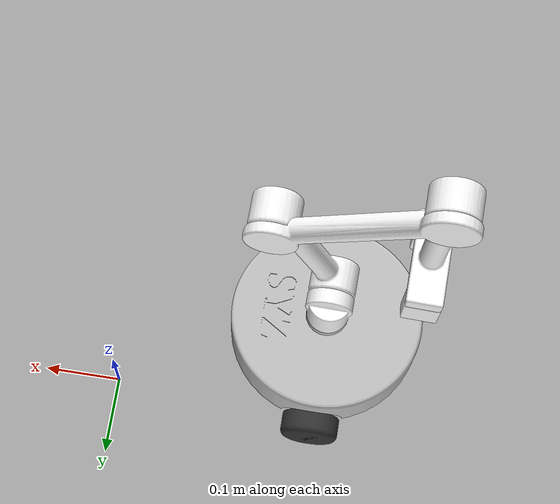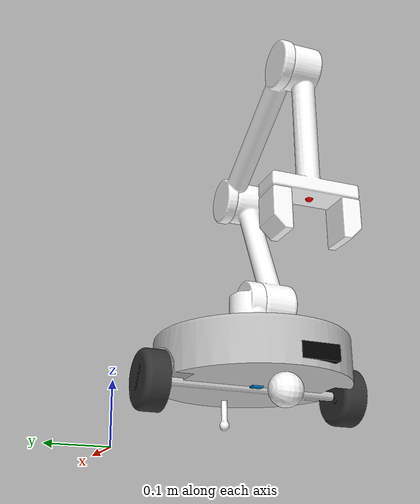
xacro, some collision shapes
<?xml version="1.0" encoding="utf-8"?>
<robot xmlns:xacro="http://www.ros.org/wiki/xacro" name="syz_car_description">

  <xacro:macro name="box_inertia" params="m w h d">
    <inertial>
      <origin xyz="0 0 0" rpy="0 0 0"/>
      <mass value="${m}"/>
      <inertia ixx="${(m/12)*(h*h+d*d)}" ixy="0" ixz="0" iyy="${(m/12)*(w*w+d*d)}" iyz="0" izz="${(m/12)*(w*w+h*h)}"/>
    </inertial>
  </xacro:macro>
  <xacro:macro name="cylinder_inertia" params="m r h">
    <inertial>
      <origin xyz="0 0 0" rpy="0 0 0"/>
      <mass value="${m}"/>
      <inertia ixx="${(m/12)*(3*r*r+h*h)}" ixy="0" ixz="0" iyy="${(m/12)*(3*r*r+h*h)}" iyz="0" izz="${(m/2)*(r*r)}"/>
    </inertial>
  </xacro:macro>
  <xacro:macro name="sphere_inertia" params="m r">
    <inertial>
      <mass value="${m}"/>
      <inertia ixx="${(2/5)*m*r*r}" ixy="0" ixz="0" iyy="${(2/5)*m*r*r}" iyz="0" izz="${(2/5)*m*r*r}"/>
    </inertial>
  </xacro:macro>

  <ros2_control name="GazeboSystem" type="system">
    <hardware><plugin>gazebo_ros2_control/GazeboSystem</plugin></hardware>
    <joint name="joint_1"><command_interface name="position"/><state_interface name="position"/><state_interface name="velocity"/></joint>
    <joint name="joint_2"><command_interface name="position"/><state_interface name="position"/><state_interface name="velocity"/></joint>
    <joint name="joint_3"><command_interface name="position"/><state_interface name="position"/><state_interface name="velocity"/></joint>
    <joint name="joint_4"><command_interface name="position"/><state_interface name="position"/><state_interface name="velocity"/></joint>
    <joint name="paw_joint_1"><command_interface name="position"/><state_interface name="position"/><state_interface name="velocity"/></joint>
    <joint name="paw_joint_2"><command_interface name="position"/><state_interface name="position"/><state_interface name="velocity"/></joint>
  </ros2_control>

  <gazebo>
    <plugin filename="libgazebo_ros2_control.so" name="gazebo_ros2_control">
      <parameters>$(find syz_car_description)/config/my_controllers.yaml</parameters>
    </plugin>
  </gazebo>

  <!-- Diff Drive 插件 -->
  <gazebo>
    <plugin name="diff_drive" filename="libgazebo_ros_diff_drive.so">
      <ros><namespace>/</namespace></ros>
      <left_joint>wheel1_joint</left_joint>
      <right_joint>wheel2_joint</right_joint>
      <wheel_separation>0.266</wheel_separation>
      <wheel_diameter>0.08</wheel_diameter>
      <max_wheel_torque>50</max_wheel_torque>
      <max_wheel_acceleration>2.0</max_wheel_acceleration>

      <!-- 【重要修改】publish_odom 保持 true (我们需要 odom 话题数据给 EKF) -->
      <publish_odom>true</publish_odom>

      <!-- 【CRITICAL FIX】publish_odom_tf 必须改为 false！ -->
      <!-- 因为我们要用 ekf_node 来发布这个 TF。如果这里是 true，会冲突导致严重抖动 -->
      <publish_odom_tf>false</publish_odom_tf>

      <publish_wheel_tf>false</publish_wheel_tf>

      <odometry_frame>odom</odometry_frame>
      <robot_base_frame>base_footprint</robot_base_frame>
    </plugin>
  </gazebo>

  <!-- base_footprint -->
  <link name="base_footprint">
    <visual>
      <origin xyz="0 0 0" rpy="0 0 0" />
      <geometry><box size="0.001 0.001 0.001" /></geometry>
    </visual>
    <inertial>
      <mass value="0.0001" />
      <origin xyz="0 0 0" />
      <inertia ixx="0.0001" ixy="0.0" ixz="0.0" iyy="0.0001" iyz="0.0" izz="0.0001" />
    </inertial>
  </link>

  <joint name="base_joint" type="fixed">
    <parent link="base_footprint"/>
    <child link="base_link"/>
    <origin xyz="0 0 -0.13924" rpy="0 0 3.14159"/>
  </joint>

  <link name="base_link">
    <visual>
      <origin xyz="0 0 0" rpy="0 0 0" />
      <geometry><mesh filename="package://syz_car_description/meshes/base_link.STL" /></geometry>
      <material name=""><color rgba="0.75 0.75 0.75 1" /></material>
    </visual>
    <collision>
      <origin xyz="0.26452 0.10337 0.22" rpy="0 0 0" />
      <geometry><cylinder radius="0.125" length="0.08"/></geometry>
    </collision>
    <inertial>
      <origin xyz="0.26452 0.10337 0.22" rpy="0 0 0" />
      <mass value="10.0" />
      <inertia ixx="0.04" ixy="0.0" ixz="0.0" iyy="0.04" iyz="0.0" izz="0.08" />
    </inertial>
  </link>

  <link name="front_camera_link">
    <visual><geometry><box size="0.02 0.05 0.02"/></geometry><material name="black"><color rgba="0 0 0 1"/></material></visual>
    <collision><geometry><box size="0.02 0.05 0.02"/></geometry></collision>
    <inertial><mass value="0.01"/><inertia ixx="1e-4" ixy="0" ixz="0" iyy="1e-4" iyz="0" izz="1e-4"/></inertial>
  </link>

  <joint name="front_camera_joint" type="fixed">
    <origin xyz="0.38 0.13 0.2" rpy="0 0 0" />
    <parent link="base_link" />
    <child link="front_camera_link" />
  </joint>

  <gazebo reference="front_camera_link">
    <sensor type="camera" name="front_camera_sensor">
      <update_rate>30.0</update_rate>
      <camera>
        <horizontal_fov>1.396</horizontal_fov>
        <image><width>320</width><height>240</height><format>R8G8B8</format></image>
        <clip><near>0.02</near><far>300</far></clip>
      </camera>
      <plugin name="front_camera_controller" filename="libgazebo_ros_camera.so">
        <alwaysOn>true</alwaysOn>
        <updateRate>30.0</updateRate>
        <cameraName>front_camera</cameraName>
        <imageTopicName>image_raw</imageTopicName>
        <cameraInfoTopicName>camera_info</cameraInfoTopicName>
        <frameName>front_camera_link</frameName>
      </plugin>
    </sensor>
  </gazebo>

  <link name="wheel1_link">
    <xacro:cylinder_inertia m="0.5" r="0.04" h="0.04"/>
    <visual><origin xyz="0 0 0" rpy="0 0 0" /><geometry><mesh filename="package://syz_car_description/meshes/wheel1_link.STL" /></geometry><material name=""><color rgba="0.2 0.2 0.2 1" /></material></visual>
    <collision><origin xyz="0 0 0" rpy="0 0 0" /><geometry><cylinder radius="0.04" length="0.04"/></geometry></collision>
  </link>
  <joint name="wheel1_joint" type="continuous">
    <origin xyz="0.26452 0.23637 0.17924" rpy="-1.5708 0 0" />
    <parent link="base_link" />
    <child link="wheel1_link" />
    <axis xyz="0 0 1" />
  </joint>

  <link name="wheel2_link">
    <xacro:cylinder_inertia m="0.5" r="0.04" h="0.04"/>
    <visual><origin xyz="0 0 0" rpy="0 0 0" /><geometry><mesh filename="package://syz_car_description/meshes/wheel2_link.STL" /></geometry><material name=""><color rgba="0.2 0.2 0.2 1" /></material></visual>
    <collision><origin xyz="0 0 0" rpy="0 0 0" /><geometry><cylinder radius="0.04" length="0.04"/></geometry></collision>
  </link>
  <joint name="wheel2_joint" type="continuous">
    <origin xyz="0.26452 -0.029632 0.17924" rpy="-1.5708 0 0" />
    <parent link="base_link" />
    <child link="wheel2_link" />
    <axis xyz="0 0 1" />
  </joint>

  <link name="link_1">
    <xacro:box_inertia m="1.0" w="0.1" h="0.1" d="0.1"/>
    <visual><origin xyz="0 0 0" rpy="0 0 0" /><geometry><mesh filename="package://syz_car_description/meshes/link_1.STL" /></geometry><material name=""><color rgba="1 1 1 1" /></material></visual>
    <collision><origin xyz="0 0 0" rpy="0 0 0" /><geometry><mesh filename="package://syz_car_description/meshes/link_1.STL" /></geometry></collision>
  </link>
  <joint name="joint_1" type="revolute">
    <origin xyz="0.26452 0.10337 0.25124" rpy="0 0 0" />
    <parent link="base_link" />
    <child link="link_1" />
    <axis xyz="0 0 1" />
    <limit lower="-3.14" upper="3.14" effort="100.0" velocity="1.0" />
    <dynamics damping="5.0" friction="5.0"/>
  </joint>

  <link name="link_2">
    <xacro:box_inertia m="0.5" w="0.05" h="0.3" d="0.05"/>
    <visual><origin xyz="0 0 0" rpy="0 0 0" /><geometry><mesh filename="package://syz_car_description/meshes/link_2.STL" /></geometry><material name=""><color rgba="1 1 1 1" /></material></visual>
    <collision><origin xyz="0 0 0" rpy="0 0 0" /><geometry><mesh filename="package://syz_car_description/meshes/link_2.STL" /></geometry></collision>
  </link>
  <joint name="joint_2" type="revolute">
    <origin xyz="0.00082073 0.03499 0.04" rpy="1.5708 0 -0.0234" />
    <parent link="link_1" />
    <child link="link_2" />
    <axis xyz="0 0 1" />
    <limit lower="-1.57" upper="1.57" effort="200.0" velocity="1.0" />
    <dynamics damping="10.0" friction="10.0"/>
  </joint>

  <link name="link_3">
    <xacro:box_inertia m="0.5" w="0.05" h="0.25" d="0.05"/>
    <visual><origin xyz="0 0 0" rpy="0 0 0" /><geometry><mesh filename="package://syz_car_description/meshes/link_3.STL" /></geometry><material name=""><color rgba="1 1 1 1" /></material></visual>
    <collision><origin xyz="0 0 0" rpy="0 0 0" /><geometry><mesh filename="package://syz_car_description/meshes/link_3.STL" /></geometry></collision>
  </link>
  <joint name="joint_3" type="revolute">
    <origin xyz="-0.0814 0.1848 0.025" rpy="0 0 0" />
    <parent link="link_2" />
    <child link="link_3" />
    <axis xyz="0 0 1" />
    <limit lower="-3.14" upper="3.14" effort="100.0" velocity="1.0" />
    <dynamics damping="2.0" friction="2.0"/>
  </joint>

  <link name="link_4">
    <xacro:box_inertia m="0.5" w="0.05" h="0.1" d="0.05"/>
    <visual><origin xyz="0 0 0" rpy="0 0 0" /><geometry><mesh filename="package://syz_car_description/meshes/link_4.STL" /></geometry><material name=""><color rgba="1 1 1 1" /></material></visual>
    <collision><origin xyz="0 0 0" rpy="0 0 0" /><geometry><mesh filename="package://syz_car_description/meshes/link_4.STL" /></geometry></collision>
  </link>
  <joint name="joint_4" type="revolute">
    <origin xyz="0.1876 0.1148 -0.025" rpy="0 0 0" />
    <parent link="link_3" />
    <child link="link_4" />
    <axis xyz="0 0 1" />
    <limit lower="-3.14" upper="3.14" effort="50.0" velocity="1.0" />
    <dynamics damping="1.0" friction="1.0"/>
  </joint>

  <link name="gripper_center_link">
    <inertial>
      <mass value="0.01"/>
      <origin xyz="0 0 0" rpy="0 0 0"/>
      <inertia ixx="1e-5" ixy="0" ixz="0" iyy="1e-5" iyz="0" izz="1e-5"/>
    </inertial>
    <visual>
      <origin xyz="0 0 0" rpy="0 0 0"/>
      <geometry><sphere radius="0.005"/></geometry>
      <material name="red"><color rgba="1 0 0 1"/></material>
    </visual>
  </link>

  <joint name="gripper_center_joint" type="revolute">
    <origin xyz="0 -0.1889 0" rpy="0 0 0" />
    <parent link="link_4" />
    <child link="gripper_center_link" />
    <axis xyz="0 0 1" />
    <limit lower="0" upper="0" effort="0" velocity="0" />
  </joint>

  <link name="paw_link_1">
    <xacro:box_inertia m="0.05" w="0.02" h="0.05" d="0.02"/>
    <visual><origin xyz="0 0 0" rpy="0 0 0" /><geometry><mesh filename="package://syz_car_description/meshes/paw_link_1.STL" /></geometry><material name=""><color rgba="1 1 1 1" /></material></visual>
    <collision><origin xyz="0 0 0" rpy="0 0 0" /><geometry><mesh filename="package://syz_car_description/meshes/paw_link_1.STL" /></geometry></collision>
  </link>
  <joint name="paw_joint_1" type="prismatic">
    <origin xyz="0 -0.1889 0.0589" rpy="3.1415 0 0" />
    <parent link="link_4" />
    <child link="paw_link_1" />
    <axis xyz="0 0 -1" />
    <limit lower="-0.05" upper="0.2" effort="10" velocity="0.5" />
  </joint>

  <link name="paw_link_2">
    <xacro:box_inertia m="0.05" w="0.02" h="0.05" d="0.02"/>
    <visual><origin xyz="0 0 0" rpy="0 0 0" /><geometry><mesh filename="package://syz_car_description/meshes/paw_link_2.STL" /></geometry><material name=""><color rgba="1 1 1 1" /></material></visual>
    <collision><origin xyz="0 0 0" rpy="0 0 0" /><geometry><mesh filename="package://syz_car_description/meshes/paw_link_2.STL" /></geometry></collision>
  </link>
  <joint name="paw_joint_2" type="prismatic">
    <origin xyz="0 -0.1889 -0.0589" rpy="0 0 0" />
    <parent link="link_4" />
    <child link="paw_link_2" />
    <axis xyz="0 0 -1" />
    <limit lower="-0.05" upper="0.2" effort="10" velocity="0.5" />
  </joint>

  <link name="imu_link">
    <visual><origin xyz="0 0 0" rpy="0 0 0"/><geometry><mesh filename="package://syz_car_description/meshes/imu_link.STL"/></geometry></visual>
    <collision><origin xyz="0 0 0" rpy="0 0 0"/><geometry><box size="0.02 0.02 0.01"/></geometry></collision>
    <inertial><mass value="0.01"/><inertia ixx="1e-6" ixy="0" ixz="0" iyy="1e-6" iyz="0" izz="1e-6"/></inertial>
  </link>
  <joint name="imu_joint" type="fixed">
    <origin xyz="0.26497 0.096543 0.20374" rpy="0 0 0" />
    <parent link="base_link" />
    <child link="imu_link" />
  </joint>
  <gazebo reference="imu_link">
    <sensor name="imu_sensor" type="imu">
      <plugin filename="libgazebo_ros_imu_sensor.so" name="imu_plugin">
        <ros><namespace>/</namespace><remapping>~/out:=imu</remapping></ros>
        <initial_orientation_as_reference>false</initial_orientation_as_reference>
      </plugin>
      <always_on>true</always_on><update_rate>100</update_rate>
    </sensor>
  </gazebo>

  <link name="laser_link">
    <visual><origin xyz="0 0 0" rpy="0 0 0"/><geometry><mesh filename="package://syz_car_description/meshes/laser_link.STL"/></geometry></visual>
    <collision><origin xyz="0 0 0" rpy="0 0 0"/><geometry><cylinder radius="0.03" length="0.04"/></geometry></collision>
    <inertial><mass value="0.1"/><inertia ixx="1e-5" ixy="0" ixz="0" iyy="1e-5" iyz="0" izz="1e-5"/></inertial>
  </link>
  <joint name="laser_joint" type="fixed">
    <origin xyz="0.35052 0.10337 0.20" rpy="0 0 0" />
    <parent link="base_link" />
    <child link="laser_link" />
  </joint>

  <gazebo reference="laser_link">
    <sensor name="lidar" type="ray">
      <always_on>true</always_on>
      <visualize>true</visualize>
      <update_rate>10</update_rate>
      <ray>
        <scan><horizontal><samples>360</samples><resolution>1.0</resolution><min_angle>0.0</min_angle><max_angle>6.28</max_angle></horizontal></scan>
        <range><min>0.25</min><max>12.0</max></range>
      </ray>
      <plugin name="scan" filename="libgazebo_ros_ray_sensor.so">
        <ros><remapping>~/out:=scan</remapping></ros>
        <output_type>sensor_msgs/LaserScan</output_type>
        <frame_name>laser_link</frame_name>
      </plugin>
    </sensor>
  </gazebo>

  <link name="camera_link">
    <visual><origin xyz="0 0 0" rpy="0 0 0"/><geometry><mesh filename="package://syz_car_description/meshes/camera_link.STL"/></geometry></visual>
    <collision><origin xyz="0 0 0" rpy="0 0 0"/><geometry><box size="0.02 0.02 0.02"/></geometry></collision>
    <inertial><mass value="0.05"/><inertia ixx="1e-5" ixy="0" ixz="0" iyy="1e-5" iyz="0" izz="1e-5"/></inertial>
  </link>
  <joint name="camera_joint" type="fixed">
    <origin xyz="0 -0.1889 0.0" rpy="0 0 0" />
    <parent link="link_4" />
    <child link="camera_link" />
  </joint>
  <gazebo reference="camera_link">
    <sensor type="camera" name="camera1">
      <update_rate>30.0</update_rate>
      <camera name="head">
        <horizontal_fov>1.396</horizontal_fov>
        <image><width>800</width><height>800</height><format>R8G8B8</format></image>
        <clip><near>0.02</near><far>300</far></clip>
      </camera>
      <plugin name="camera_controller" filename="libgazebo_ros_camera.so">
        <alwaysOn>true</alwaysOn><updateRate>0.0</updateRate>
        <cameraName>camera</cameraName>
        <imageTopicName>image_raw</imageTopicName>
        <cameraInfoTopicName>camera_info</cameraInfoTopicName>
        <frameName>camera_link</frameName>
      </plugin>
    </sensor>
  </gazebo>

  <link name="round1_link">
    <xacro:sphere_inertia m="0.05" r="0.025"/>
    <visual><origin xyz="0 0 0" rpy="0 0 0" /><geometry><mesh filename="package://syz_car_description/meshes/round1_link.STL" /></geometry><material name=""><color rgba="1 1 1 1" /></material></visual>
    <collision><origin xyz="0 -0.02 0" rpy="0 0 0" /><geometry><sphere radius="0.021"/></geometry></collision>
  </link>
  <joint name="round1_joint" type="fixed">
    <origin xyz="0.35052 0.10337 0.18124" rpy="1.5708 0 0" />
    <parent link="base_link" />
    <child link="round1_link" />
    <axis xyz="0 1 0" />
  </joint>

  <link name="round2_link">
    <xacro:sphere_inertia m="0.05" r="0.025"/>
    <visual><origin xyz="0 0 0" rpy="0 0 0" /><geometry><mesh filename="package://syz_car_description/meshes/round2_link.STL" /></geometry><material name=""><color rgba="1 1 1 1" /></material></visual>
    <collision><origin xyz="0 -0.02 0" rpy="0 0 0" /><geometry><sphere radius="0.021"/></geometry></collision>
  </link>
  <joint name="round2_joint" type="fixed">
    <origin xyz="0.178521988305881 0.103367515007061 0.181239553554958" rpy="1.5707963267949 0 0" />
    <parent link="base_link" />
    <child link="round2_link" />
    <axis xyz="0 1 0" />
  </joint>

  <gazebo reference="round1_link"><mu1>0.0</mu1><mu2>0.0</mu2></gazebo>
  <gazebo reference="round2_link"><mu1>0.0</mu1><mu2>0.0</mu2></gazebo>

  <gazebo>
    <plugin name="vacuum_gripper" filename="libgazebo_ros_vacuum_gripper.so">
      <ros>
        <namespace>/</namespace>
        <remapping>switch:=gripper_switch</remapping>
      </ros>
      <link_name>gripper_center_link</link_name>
      <max_force>10000000.0</max_force>
      <max_distance>0.08</max_distance>
      <fixed>fixed</fixed>
    </plugin>
  </gazebo>

</robot>
